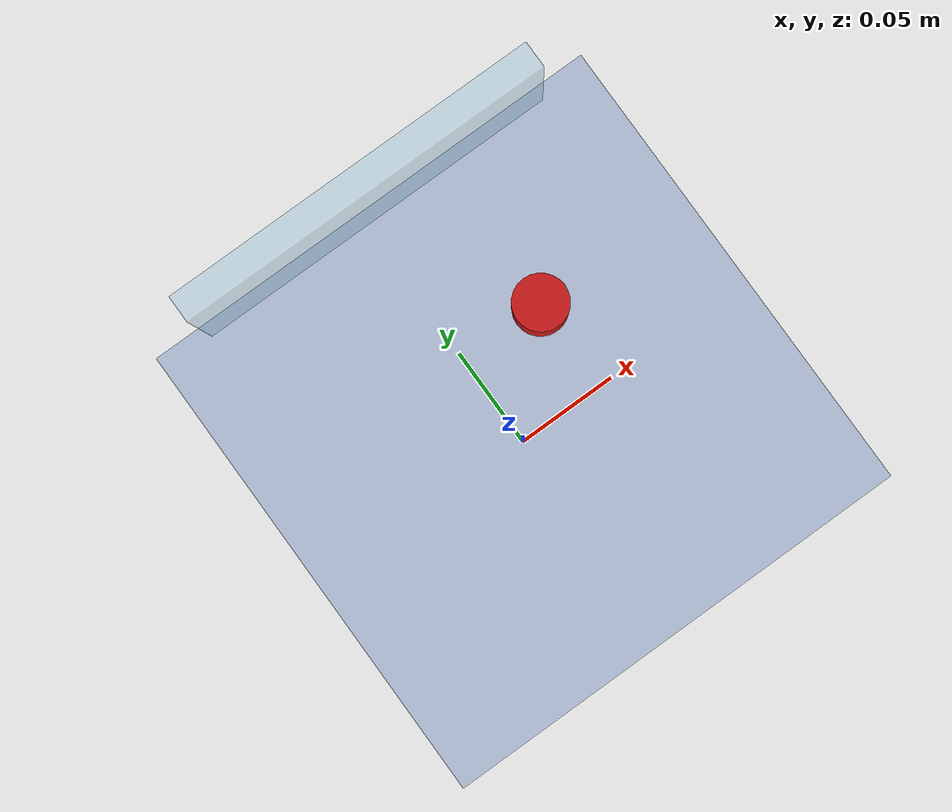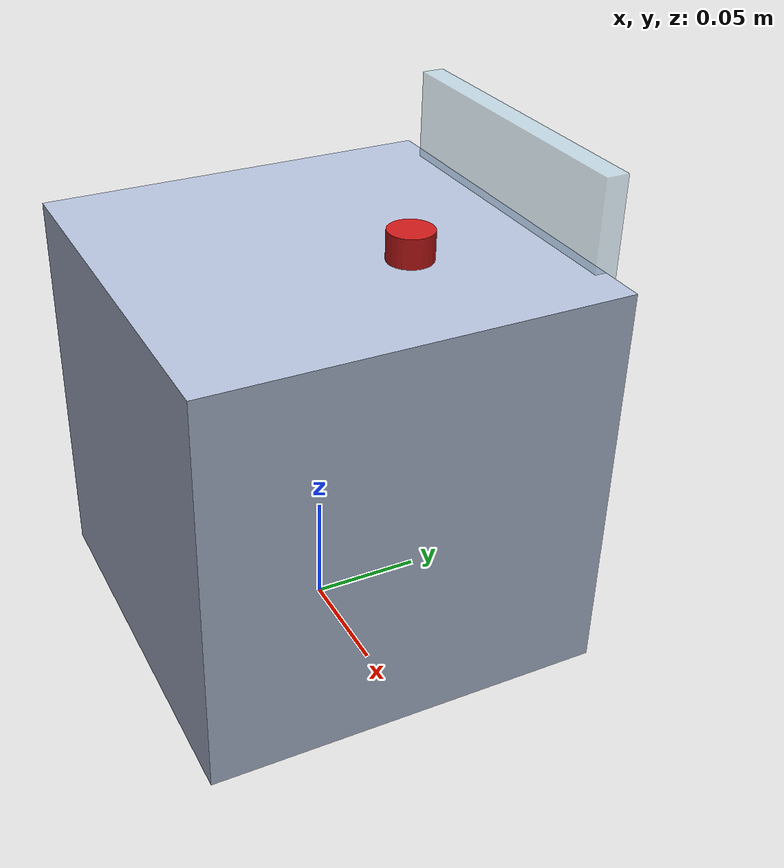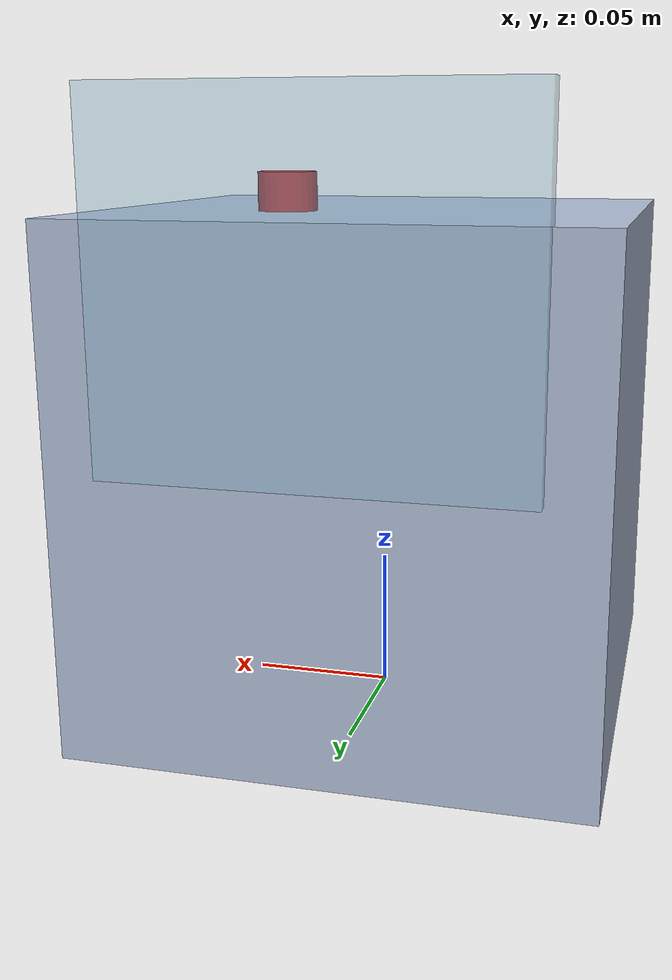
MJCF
<?xml version="1.0" encoding="utf-8"?>
<mujoco model="cryostat_microtome">
  <compiler angle="radian" autolimits="true"/>
  <default>
    <default class="body"><geom contype="1" conaffinity="1"/></default>
  </default>
  <worldbody>
    <body name="base">
      <geom type="box" size="0.09 0.09 0.09" pos="0 0 0.09" rgba="0.7 0.75 0.85 1" class="body"/>
      <geom type="box" size="0.027 0.0045 0.0225" pos="-0.045 -0.081 0.135" rgba="0.9 0.7 0.1 1" class="body"/>
      <geom type="cylinder" size="0.01 0.008" pos="0.027 0.027 0.185" rgba="0.8 0.1 0.1 1" class="body"/>
      <body name="chamber_lid" pos="0 0.09 0.16">
        <joint name="chamber_lid_joint" type="hinge" axis="1 0 0" range="0 1.6" damping="0.4" frictionloss="0.3"/>
  <geom type="box" size="0.07 0.005 0.06" pos="0 0 0" rgba="0.6 0.8 0.9 0.4" class="body"/>
      </body>
    </body>
  </worldbody>
</mujoco>
